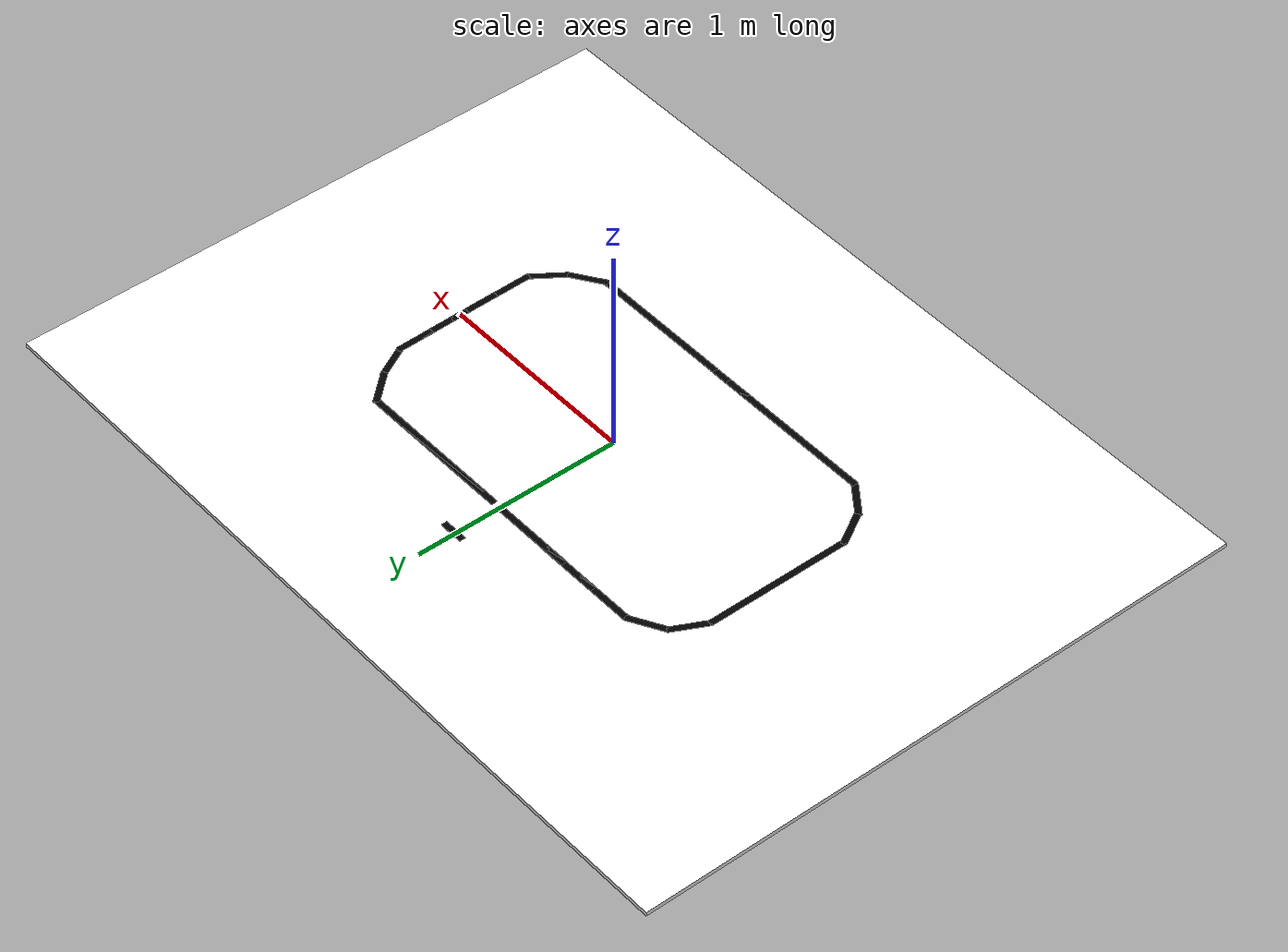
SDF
<sdf version='1.10'>
  <world name='palya_final'>
    <gravity>0 0 -9.8000000000000007</gravity>
    <magnetic_field>5.5644999999999998e-06 2.2875799999999999e-05 -4.2388400000000002e-05</magnetic_field>
    <atmosphere type='adiabatic'/>
    <physics type='ode'>
      <max_step_size>0.001</max_step_size>
      <real_time_factor>1</real_time_factor>
      <real_time_update_rate>1000</real_time_update_rate>
    </physics>
    <plugin name='gz::sim::systems::Physics' filename='gz-sim-physics-system'/>
    <plugin name='gz::sim::systems::UserCommands' filename='gz-sim-user-commands-system'/>
    <plugin name='gz::sim::systems::SceneBroadcaster' filename='gz-sim-scene-broadcaster-system'/>
    <plugin name='gz::sim::systems::Contact' filename='gz-sim-contact-system'/>
    <plugin name='gz::sim::systems::Sensors' filename='gz-sim-sensors-system'>
      <render_engine>ogre2</render_engine>
    </plugin>
    <plugin name='gz::sim::systems::Imu' filename='gz-sim-imu-system'/>
    <scene>
      <ambient>0.400000006 0.400000006 0.400000006 1</ambient>
      <background>0.699999988 0.699999988 0.699999988 1</background>
      <shadows>true</shadows>
    </scene>
    <model name='ground_plane'>
      <static>true</static>
      <link name='link'>
        <collision name='collision'>
          <geometry>
            <box>
              <size>4 3 0.02</size>
            </box>
          </geometry>
          <surface>
            <friction>
              <ode/>
            </friction>
            <bounce/>
            <contact/>
          </surface>
        </collision>
        <visual name='visual'>
          <geometry>
            <box>
              <size>4 3 0.02</size>
            </box>
          </geometry>
          <material>
            <ambient>1 1 1 1</ambient>
            <diffuse>1 1 1 1</diffuse>
          </material>
        </visual>
        <pose>0 0 0 0 0 0</pose>
        <inertial>
          <pose>0 0 0 0 0 0</pose>
          <mass>1</mass>
          <inertia>
            <ixx>1</ixx>
            <ixy>0</ixy>
            <ixz>0</ixz>
            <iyy>1</iyy>
            <iyz>0</iyz>
            <izz>1</izz>
          </inertia>
        </inertial>
        <enable_wind>false</enable_wind>
      </link>
      <pose>0 0 0 0 0 0</pose>
      <self_collide>false</self_collide>
    </model>
    <model name='top_left'>
      <static>true</static>
      <pose>-0.26910600066184998 0.60000002384185791 0.020999999716877937 0 0 0</pose>
      <link name='link'>
        <visual name='visual'>
          <geometry>
            <box>
              <size>0.29999999999999999 0.029999999999999999 0.001</size>
            </box>
          </geometry>
          <material>
            <ambient>0 0 0 1</ambient>
            <diffuse>0 0 0 1</diffuse>
          </material>
        </visual>
        <pose>0 0 0 0 0 0</pose>
        <inertial>
          <pose>0 0 0 0 0 0</pose>
          <mass>1</mass>
          <inertia>
            <ixx>1</ixx>
            <ixy>0</ixy>
            <ixz>0</ixz>
            <iyy>1</iyy>
            <iyz>0</iyz>
            <izz>1</izz>
          </inertia>
        </inertial>
        <enable_wind>false</enable_wind>
      </link>
      <self_collide>false</self_collide>
    </model>
    <model name='top_gap_piece'>
      <static>true</static>
      <pose>0 0.8258134126663208 0.020999999716877937 0 0 0</pose>
      <link name='link'>
        <visual name='visual'>
          <geometry>
            <box>
              <size>0.12 0.029999999999999999 0.001</size>
            </box>
          </geometry>
          <material>
            <ambient>0 0 0 1</ambient>
            <diffuse>0 0 0 1</diffuse>
          </material>
        </visual>
        <pose>0 0 0 0 0 0</pose>
        <inertial>
          <pose>0 0 0 0 0 0</pose>
          <mass>1</mass>
          <inertia>
            <ixx>1</ixx>
            <ixy>0</ixy>
            <ixz>0</ixz>
            <iyy>1</iyy>
            <iyz>0</iyz>
            <izz>1</izz>
          </inertia>
        </inertial>
        <enable_wind>false</enable_wind>
      </link>
      <self_collide>false</self_collide>
    </model>
    <model name='top_right'>
      <static>true</static>
      <pose>0.45000000000000001 0.59999999999999998 0.021000000000000001 0 0 0</pose>
      <link name='link'>
        <visual name='visual'>
          <geometry>
            <box>
              <size>0.69999999999999996 0.029999999999999999 0.001</size>
            </box>
          </geometry>
          <material>
            <ambient>0 0 0 1</ambient>
            <diffuse>0 0 0 1</diffuse>
          </material>
        </visual>
        <pose>0 0 0 0 0 0</pose>
        <inertial>
          <pose>0 0 0 0 0 0</pose>
          <mass>1</mass>
          <inertia>
            <ixx>1</ixx>
            <ixy>0</ixy>
            <ixz>0</ixz>
            <iyy>1</iyy>
            <iyz>0</iyz>
            <izz>1</izz>
          </inertia>
        </inertial>
        <enable_wind>false</enable_wind>
      </link>
      <self_collide>false</self_collide>
    </model>
    <model name='bottom_left'>
      <static>true</static>
      <pose>-0.47120869159698486 -0.58046400547027588 0.020999999716877937 0 0 0</pose>
      <link name='link'>
        <visual name='visual'>
          <geometry>
            <box>
              <size>0.69999999999999996 0.029999999999999999 0.001</size>
            </box>
          </geometry>
          <material>
            <ambient>0 0 0 1</ambient>
            <diffuse>0 0 0 1</diffuse>
          </material>
        </visual>
        <pose>0 0 0 0 0 0</pose>
        <inertial>
          <pose>0 0 0 0 0 0</pose>
          <mass>1</mass>
          <inertia>
            <ixx>1</ixx>
            <ixy>0</ixy>
            <ixz>0</ixz>
            <iyy>1</iyy>
            <iyz>0</iyz>
            <izz>1</izz>
          </inertia>
        </inertial>
        <enable_wind>false</enable_wind>
      </link>
      <self_collide>false</self_collide>
    </model>
    <model name='bottom_gap_piece'>
      <static>true</static>
      <pose>0 -0.58018052577972412 0.020999999716877937 0 0 0</pose>
      <link name='link'>
        <visual name='visual'>
          <geometry>
            <box>
              <size>0.12 0.029999999999999999 0.001</size>
            </box>
          </geometry>
          <material>
            <ambient>0 0 0 1</ambient>
            <diffuse>0 0 0 1</diffuse>
          </material>
        </visual>
        <pose>0 0 0 0 0 0</pose>
        <inertial>
          <pose>0 0 0 0 0 0</pose>
          <mass>1</mass>
          <inertia>
            <ixx>1</ixx>
            <ixy>0</ixy>
            <ixz>0</ixz>
            <iyy>1</iyy>
            <iyz>0</iyz>
            <izz>1</izz>
          </inertia>
        </inertial>
        <enable_wind>false</enable_wind>
      </link>
      <self_collide>false</self_collide>
    </model>
    <model name='bottom_right'>
      <static>true</static>
      <pose>0.39569446444511414 -0.58136898279190063 0.020999999716877937 0 0 0</pose>
      <link name='link'>
        <visual name='visual'>
          <geometry>
            <box>
              <size>0.69999999999999996 0.029999999999999999 0.001</size>
            </box>
          </geometry>
          <material>
            <ambient>0 0 0 1</ambient>
            <diffuse>0 0 0 1</diffuse>
          </material>
        </visual>
        <pose>0 0 0 0 0 0</pose>
        <inertial>
          <pose>0 0 0 0 0 0</pose>
          <mass>1</mass>
          <inertia>
            <ixx>1</ixx>
            <ixy>0</ixy>
            <ixz>0</ixz>
            <iyy>1</iyy>
            <iyz>0</iyz>
            <izz>1</izz>
          </inertia>
        </inertial>
        <enable_wind>false</enable_wind>
      </link>
      <self_collide>false</self_collide>
    </model>
    <model name='right_curve_1'>
      <static>true</static>
      <pose>0.84638404846191406 0.53803074359893799 0.020999999716877937 0 0 -0.85044297683427328</pose>
      <link name='link'>
        <visual name='visual'>
          <geometry>
            <box>
              <size>0.17999999999999999 0.029999999999999999 0.001</size>
            </box>
          </geometry>
          <material>
            <ambient>0 0 0 1</ambient>
            <diffuse>0 0 0 1</diffuse>
          </material>
        </visual>
        <pose>0 0 0 0 0 0</pose>
        <inertial>
          <pose>0 0 0 0 0 0</pose>
          <mass>1</mass>
          <inertia>
            <ixx>1</ixx>
            <ixy>0</ixy>
            <ixz>0</ixz>
            <iyy>1</iyy>
            <iyz>0</iyz>
            <izz>1</izz>
          </inertia>
        </inertial>
        <enable_wind>false</enable_wind>
      </link>
      <self_collide>false</self_collide>
    </model>
    <model name='right_curve_2'>
      <static>true</static>
      <pose>0.93702691793441772 0.40789619088172913 0.020999999716877937 0 0 2.048779951075919</pose>
      <link name='link'>
        <visual name='visual'>
          <geometry>
            <box>
              <size>0.17999999999999999 0.029999999999999999 0.001</size>
            </box>
          </geometry>
          <material>
            <ambient>0 0 0 1</ambient>
            <diffuse>0 0 0 1</diffuse>
          </material>
        </visual>
        <pose>0 0 0 0 0 0</pose>
        <inertial>
          <pose>0 0 0 0 0 0</pose>
          <mass>1</mass>
          <inertia>
            <ixx>1</ixx>
            <ixy>0</ixy>
            <ixz>0</ixz>
            <iyy>1</iyy>
            <iyz>0</iyz>
            <izz>1</izz>
          </inertia>
        </inertial>
        <enable_wind>false</enable_wind>
      </link>
      <self_collide>false</self_collide>
    </model>
    <model name='right_gap_piece'>
      <static>true</static>
      <pose>0.98131024837493896 -4.4021129497195943e-07 0.020999999716877937 0 0 1.5708000357176291</pose>
      <link name='link'>
        <visual name='visual'>
          <geometry>
            <box>
              <size>0.12 0.029999999999999999 0.001</size>
            </box>
          </geometry>
          <material>
            <ambient>0 0 0 1</ambient>
            <diffuse>0 0 0 1</diffuse>
          </material>
        </visual>
        <pose>0 0 0 0 0 0</pose>
        <inertial>
          <pose>0 0 0 0 0 0</pose>
          <mass>1</mass>
          <inertia>
            <ixx>1</ixx>
            <ixy>0</ixy>
            <ixz>0</ixz>
            <iyy>1</iyy>
            <iyz>0</iyz>
            <izz>1</izz>
          </inertia>
        </inertial>
        <enable_wind>false</enable_wind>
      </link>
      <self_collide>false</self_collide>
    </model>
    <model name='right_curve_3'>
      <static>true</static>
      <pose>0.93625086545944214 -0.4195687472820282 0.020999999716877937 0 0 0.94944601316312327</pose>
      <link name='link'>
        <visual name='visual'>
          <geometry>
            <box>
              <size>0.17999999999999999 0.029999999999999999 0.001</size>
            </box>
          </geometry>
          <material>
            <ambient>0 0 0 1</ambient>
            <diffuse>0 0 0 1</diffuse>
          </material>
        </visual>
        <pose>0 0 0 0 0 0</pose>
        <inertial>
          <pose>0 0 0 0 0 0</pose>
          <mass>1</mass>
          <inertia>
            <ixx>1</ixx>
            <ixy>0</ixy>
            <ixz>0</ixz>
            <iyy>1</iyy>
            <iyz>0</iyz>
            <izz>1</izz>
          </inertia>
        </inertial>
        <enable_wind>false</enable_wind>
      </link>
      <self_collide>false</self_collide>
    </model>
    <model name='right_curve_4'>
      <static>true</static>
      <pose>0.81408655643463135 -0.53684383630752563 0.020999999716877937 0 0 0.59493201391759443</pose>
      <link name='link'>
        <visual name='visual'>
          <geometry>
            <box>
              <size>0.17999999999999999 0.029999999999999999 0.001</size>
            </box>
          </geometry>
          <material>
            <ambient>0 0 0 1</ambient>
            <diffuse>0 0 0 1</diffuse>
          </material>
        </visual>
        <pose>0 0 0 0 0 0</pose>
        <inertial>
          <pose>0 0 0 0 0 0</pose>
          <mass>1</mass>
          <inertia>
            <ixx>1</ixx>
            <ixy>0</ixy>
            <ixz>0</ixz>
            <iyy>1</iyy>
            <iyz>0</iyz>
            <izz>1</izz>
          </inertia>
        </inertial>
        <enable_wind>false</enable_wind>
      </link>
      <self_collide>false</self_collide>
    </model>
    <model name='left_curve_1'>
      <static>true</static>
      <pose>-0.87782394886016846 0.55979818105697632 0.020999999716877937 0 0 -2.629619980278898</pose>
      <link name='link'>
        <visual name='visual'>
          <geometry>
            <box>
              <size>0.17999999999999999 0.029999999999999999 0.001</size>
            </box>
          </geometry>
          <material>
            <ambient>0 0 0 1</ambient>
            <diffuse>0 0 0 1</diffuse>
          </material>
        </visual>
        <pose>0 0 0 0 0 0</pose>
        <inertial>
          <pose>0 0 0 0 0 0</pose>
          <mass>1</mass>
          <inertia>
            <ixx>1</ixx>
            <ixy>0</ixy>
            <ixz>0</ixz>
            <iyy>1</iyy>
            <iyz>0</iyz>
            <izz>1</izz>
          </inertia>
        </inertial>
        <enable_wind>false</enable_wind>
      </link>
      <self_collide>false</self_collide>
    </model>
    <model name='left_curve_2'>
      <static>true</static>
      <pose>-0.99519670009613037 0.44211354851722717 0.020999999716877937 0 0 -2.0471099917709874</pose>
      <link name='link'>
        <visual name='visual'>
          <geometry>
            <box>
              <size>0.17999999999999999 0.029999999999999999 0.001</size>
            </box>
          </geometry>
          <material>
            <ambient>0 0 0 1</ambient>
            <diffuse>0 0 0 1</diffuse>
          </material>
        </visual>
        <pose>0 0 0 0 0 0</pose>
        <inertial>
          <pose>0 0 0 0 0 0</pose>
          <mass>1</mass>
          <inertia>
            <ixx>1</ixx>
            <ixy>0</ixy>
            <ixz>0</ixz>
            <iyy>1</iyy>
            <iyz>0</iyz>
            <izz>1</izz>
          </inertia>
        </inertial>
        <enable_wind>false</enable_wind>
      </link>
      <self_collide>false</self_collide>
    </model>
    <model name='left_middle'>
      <static>true</static>
      <pose>-1.0354800224304199 0.021092861890792847 0.020999999716877937 0 0 1.5708000357176291</pose>
      <link name='link'>
        <visual name='visual'>
          <geometry>
            <box>
              <size>0.69999999999999996 0.029999999999999999 0.001</size>
            </box>
          </geometry>
          <material>
            <ambient>0 0 0 1</ambient>
            <diffuse>0 0 0 1</diffuse>
          </material>
        </visual>
        <pose>0 0 0 0 0 0</pose>
        <inertial>
          <pose>0 0 0 0 0 0</pose>
          <mass>1</mass>
          <inertia>
            <ixx>1</ixx>
            <ixy>0</ixy>
            <ixz>0</ixz>
            <iyy>1</iyy>
            <iyz>0</iyz>
            <izz>1</izz>
          </inertia>
        </inertial>
        <enable_wind>false</enable_wind>
      </link>
      <self_collide>false</self_collide>
    </model>
    <model name='left_curve_3'>
      <static>true</static>
      <pose>-0.99617701768875122 -0.39867201447486877 0.020999999716877937 0 0 -1.0447234645439363</pose>
      <link name='link'>
        <visual name='visual'>
          <geometry>
            <box>
              <size>0.17999999999999999 0.029999999999999999 0.001</size>
            </box>
          </geometry>
          <material>
            <ambient>0 0 0 1</ambient>
            <diffuse>0 0 0 1</diffuse>
          </material>
        </visual>
        <pose>0 0 0 0 0 0</pose>
        <inertial>
          <pose>0 0 0 0 0 0</pose>
          <mass>1</mass>
          <inertia>
            <ixx>1</ixx>
            <ixy>0</ixy>
            <ixz>0</ixz>
            <iyy>1</iyy>
            <iyz>0</iyz>
            <izz>1</izz>
          </inertia>
        </inertial>
        <enable_wind>false</enable_wind>
      </link>
      <self_collide>false</self_collide>
    </model>
    <model name='left_curve_4'>
      <static>true</static>
      <pose>-0.88738560676574707 -0.5270264744758606 0.020999999716877937 0 0 -0.63770003467626546</pose>
      <link name='link'>
        <visual name='visual'>
          <geometry>
            <box>
              <size>0.17999999999999999 0.029999999999999999 0.001</size>
            </box>
          </geometry>
          <material>
            <ambient>0 0 0 1</ambient>
            <diffuse>0 0 0 1</diffuse>
          </material>
        </visual>
        <pose>0 0 0 0 0 0</pose>
        <inertial>
          <pose>0 0 0 0 0 0</pose>
          <mass>1</mass>
          <inertia>
            <ixx>1</ixx>
            <ixy>0</ixy>
            <ixz>0</ixz>
            <iyy>1</iyy>
            <iyz>0</iyz>
            <izz>1</izz>
          </inertia>
        </inertial>
        <enable_wind>false</enable_wind>
      </link>
      <self_collide>false</self_collide>
    </model>
    <model name='top_left_1'>
      <static>true</static>
      <pose>-0.45170495376145026 0.60131559149736391 0.020999999716877937 0 0 0</pose>
      <link name='link'>
        <visual name='visual'>
          <geometry>
            <box>
              <size>0.29999999999999999 0.029999999999999999 0.001</size>
            </box>
          </geometry>
          <material>
            <ambient>0 0 0 1</ambient>
            <diffuse>0 0 0 1</diffuse>
          </material>
        </visual>
        <pose>0 0 0 0 0 0</pose>
        <inertial>
          <pose>0 0 0 0 0 0</pose>
          <mass>1</mass>
          <inertia>
            <ixx>1</ixx>
            <ixy>0</ixy>
            <ixz>0</ixz>
            <iyy>1</iyy>
            <iyz>0</iyz>
            <izz>1</izz>
          </inertia>
        </inertial>
        <enable_wind>false</enable_wind>
      </link>
      <self_collide>false</self_collide>
    </model>
    <model name='top_left_2'>
      <static>true</static>
      <pose>-0.66252156843506416 0.60108743968749034 0.020999999716877937 0 0 0</pose>
      <link name='link'>
        <visual name='visual'>
          <geometry>
            <box>
              <size>0.29999999999999999 0.029999999999999999 0.001</size>
            </box>
          </geometry>
          <material>
            <ambient>0 0 0 1</ambient>
            <diffuse>0 0 0 1</diffuse>
          </material>
        </visual>
        <pose>0 0 0 0 0 0</pose>
        <inertial>
          <pose>0 0 0 0 0 0</pose>
          <mass>1</mass>
          <inertia>
            <ixx>1</ixx>
            <ixy>0</ixy>
            <ixz>0</ixz>
            <iyy>1</iyy>
            <iyz>0</iyz>
            <izz>1</izz>
          </inertia>
        </inertial>
        <enable_wind>false</enable_wind>
      </link>
      <self_collide>false</self_collide>
    </model>
    <model name='bottom_gap_piece_1'>
      <static>true</static>
      <pose>-0.096627698534307985 -0.58045240181260671 0.020999999716877937 0 0 0</pose>
      <link name='link'>
        <visual name='visual'>
          <geometry>
            <box>
              <size>0.12 0.029999999999999999 0.001</size>
            </box>
          </geometry>
          <material>
            <ambient>0 0 0 1</ambient>
            <diffuse>0 0 0 1</diffuse>
          </material>
        </visual>
        <pose>0 0 0 0 0 0</pose>
        <inertial>
          <pose>0 0 0 0 0 0</pose>
          <mass>1</mass>
          <inertia>
            <ixx>1</ixx>
            <ixy>0</ixy>
            <ixz>0</ixz>
            <iyy>1</iyy>
            <iyz>0</iyz>
            <izz>1</izz>
          </inertia>
        </inertial>
        <enable_wind>false</enable_wind>
      </link>
      <self_collide>false</self_collide>
    </model>
    <model name='right_curve_2_1'>
      <static>true</static>
      <pose>0.98471798662360421 -0.26743809654064116 0.020999999716877937 0 0 1.5846099810432914</pose>
      <link name='link'>
        <visual name='visual'>
          <geometry>
            <box>
              <size>0.17999999999999999 0.029999999999999999 0.001</size>
            </box>
          </geometry>
          <material>
            <ambient>0 0 0 1</ambient>
            <diffuse>0 0 0 1</diffuse>
          </material>
        </visual>
        <pose>0 0 0 0 0 0</pose>
        <inertial>
          <pose>0 0 0 0 0 0</pose>
          <mass>1</mass>
          <inertia>
            <ixx>1</ixx>
            <ixy>0</ixy>
            <ixz>0</ixz>
            <iyy>1</iyy>
            <iyz>0</iyz>
            <izz>1</izz>
          </inertia>
        </inertial>
        <enable_wind>false</enable_wind>
      </link>
      <self_collide>false</self_collide>
    </model>
    <model name='right_curve_2_1_1'>
      <static>true</static>
      <pose>0.98313922028171985 -0.11206129954230934 0.020999999716877937 0 0 1.5846099810432914</pose>
      <link name='link'>
        <visual name='visual'>
          <geometry>
            <box>
              <size>0.17999999999999999 0.029999999999999999 0.001</size>
            </box>
          </geometry>
          <material>
            <ambient>0 0 0 1</ambient>
            <diffuse>0 0 0 1</diffuse>
          </material>
        </visual>
        <pose>0 0 0 0 0 0</pose>
        <inertial>
          <pose>0 0 0 0 0 0</pose>
          <mass>1</mass>
          <inertia>
            <ixx>1</ixx>
            <ixy>0</ixy>
            <ixz>0</ixz>
            <iyy>1</iyy>
            <iyz>0</iyz>
            <izz>1</izz>
          </inertia>
        </inertial>
        <enable_wind>false</enable_wind>
      </link>
      <self_collide>false</self_collide>
    </model>
    <model name='right_curve_2_2'>
      <static>true</static>
      <pose>0.9790130838982164 0.14029067620736174 0.020999999716877937 0 0 1.5846099810432914</pose>
      <link name='link'>
        <visual name='visual'>
          <geometry>
            <box>
              <size>0.17999999999999999 0.029999999999999999 0.001</size>
            </box>
          </geometry>
          <material>
            <ambient>0 0 0 1</ambient>
            <diffuse>0 0 0 1</diffuse>
          </material>
        </visual>
        <pose>0 0 0 0 0 0</pose>
        <inertial>
          <pose>0 0 0 0 0 0</pose>
          <mass>1</mass>
          <inertia>
            <ixx>1</ixx>
            <ixy>0</ixy>
            <ixz>0</ixz>
            <iyy>1</iyy>
            <iyz>0</iyz>
            <izz>1</izz>
          </inertia>
        </inertial>
        <enable_wind>false</enable_wind>
      </link>
      <self_collide>false</self_collide>
    </model>
    <model name='right_curve_2_3'>
      <static>true</static>
      <pose>0.97662795888737797 0.25745048966398143 0.020999999716877937 0 0 1.5846099810432914</pose>
      <link name='link'>
        <visual name='visual'>
          <geometry>
            <box>
              <size>0.17999999999999999 0.029999999999999999 0.001</size>
            </box>
          </geometry>
          <material>
            <ambient>0 0 0 1</ambient>
            <diffuse>0 0 0 1</diffuse>
          </material>
        </visual>
        <pose>0 0 0 0 0 0</pose>
        <inertial>
          <pose>0 0 0 0 0 0</pose>
          <mass>1</mass>
          <inertia>
            <ixx>1</ixx>
            <ixy>0</ixy>
            <ixz>0</ixz>
            <iyy>1</iyy>
            <iyz>0</iyz>
            <izz>1</izz>
          </inertia>
        </inertial>
        <enable_wind>false</enable_wind>
      </link>
      <self_collide>false</self_collide>
    </model>
    <model name='top_right_1'>
      <static>true</static>
      <pose>0.37037453257434683 0.59964700180476926 0.020999999716877937 0 0 0</pose>
      <link name='link'>
        <visual name='visual'>
          <geometry>
            <box>
              <size>0.69999999999999996 0.029999999999999999 0.001</size>
            </box>
          </geometry>
          <material>
            <ambient>0 0 0 1</ambient>
            <diffuse>0 0 0 1</diffuse>
          </material>
        </visual>
        <pose>0 0 0 0 0 0</pose>
        <inertial>
          <pose>0 0 0 0 0 0</pose>
          <mass>1</mass>
          <inertia>
            <ixx>1</ixx>
            <ixy>0</ixy>
            <ixz>0</ixz>
            <iyy>1</iyy>
            <iyz>0</iyz>
            <izz>1</izz>
          </inertia>
        </inertial>
        <enable_wind>false</enable_wind>
      </link>
      <self_collide>false</self_collide>
    </model>
    <model name='top_left_3'>
      <static>true</static>
      <pose>-0.17369016744050803 0.5997149885568126 0.020999999716877937 0 0 0</pose>
      <link name='link'>
        <visual name='visual'>
          <geometry>
            <box>
              <size>0.29999999999999999 0.029999999999999999 0.001</size>
            </box>
          </geometry>
          <material>
            <ambient>0 0 0 1</ambient>
            <diffuse>0 0 0 1</diffuse>
          </material>
        </visual>
        <pose>0 0 0 0 0 0</pose>
        <inertial>
          <pose>0 0 0 0 0 0</pose>
          <mass>1</mass>
          <inertia>
            <ixx>1</ixx>
            <ixy>0</ixy>
            <ixz>0</ixz>
            <iyy>1</iyy>
            <iyz>0</iyz>
            <izz>1</izz>
          </inertia>
        </inertial>
        <enable_wind>false</enable_wind>
      </link>
      <self_collide>false</self_collide>
    </model>
    <light name='sun' type='directional'>
      <pose>0 0 5 0 0 0</pose>
      <cast_shadows>false</cast_shadows>
      <intensity>1</intensity>
      <direction>-0.5 0.10000000000000001 -1</direction>
      <diffuse>1 1 1 1</diffuse>
      <specular>0.100000001 0.100000001 0.100000001 1</specular>
      <attenuation>
        <range>10</range>
        <linear>1</linear>
        <constant>1</constant>
        <quadratic>0</quadratic>
      </attenuation>
      <spot>
        <inner_angle>0</inner_angle>
        <outer_angle>0</outer_angle>
        <falloff>0</falloff>
      </spot>
    </light>
  </world>
</sdf>
